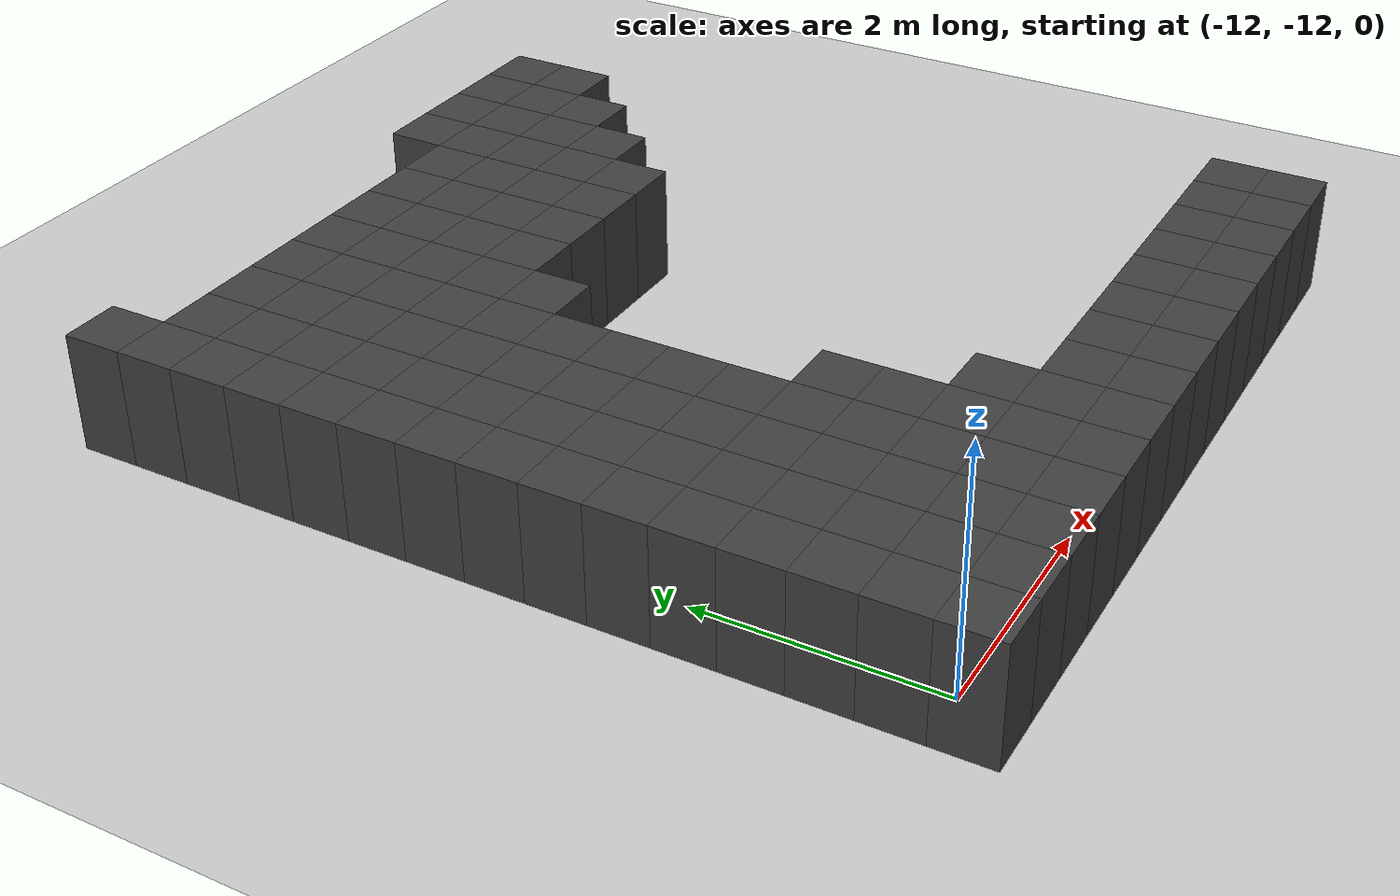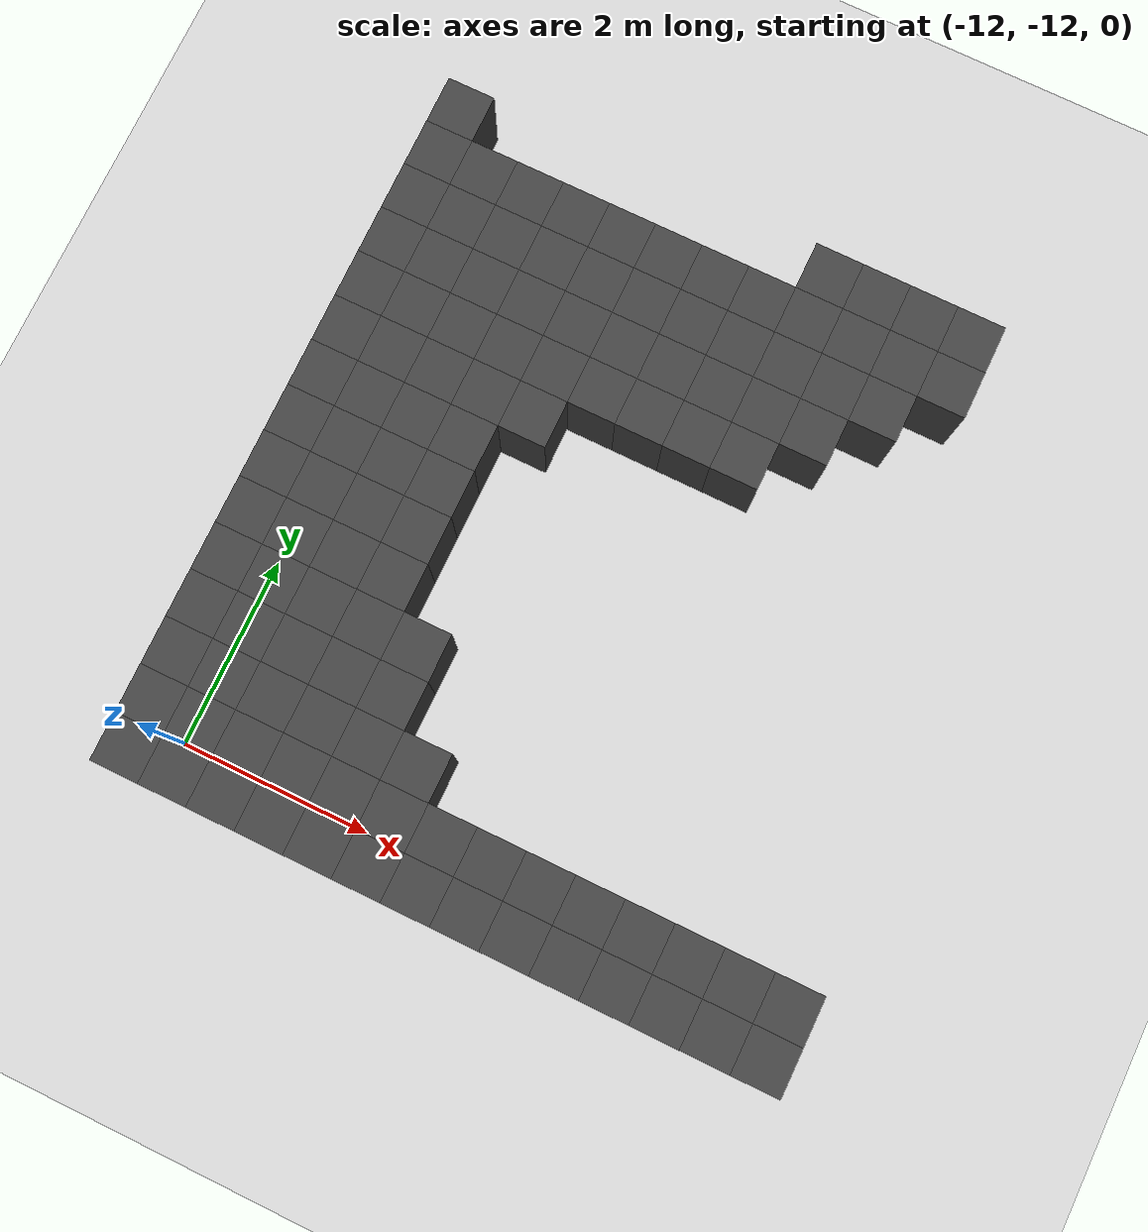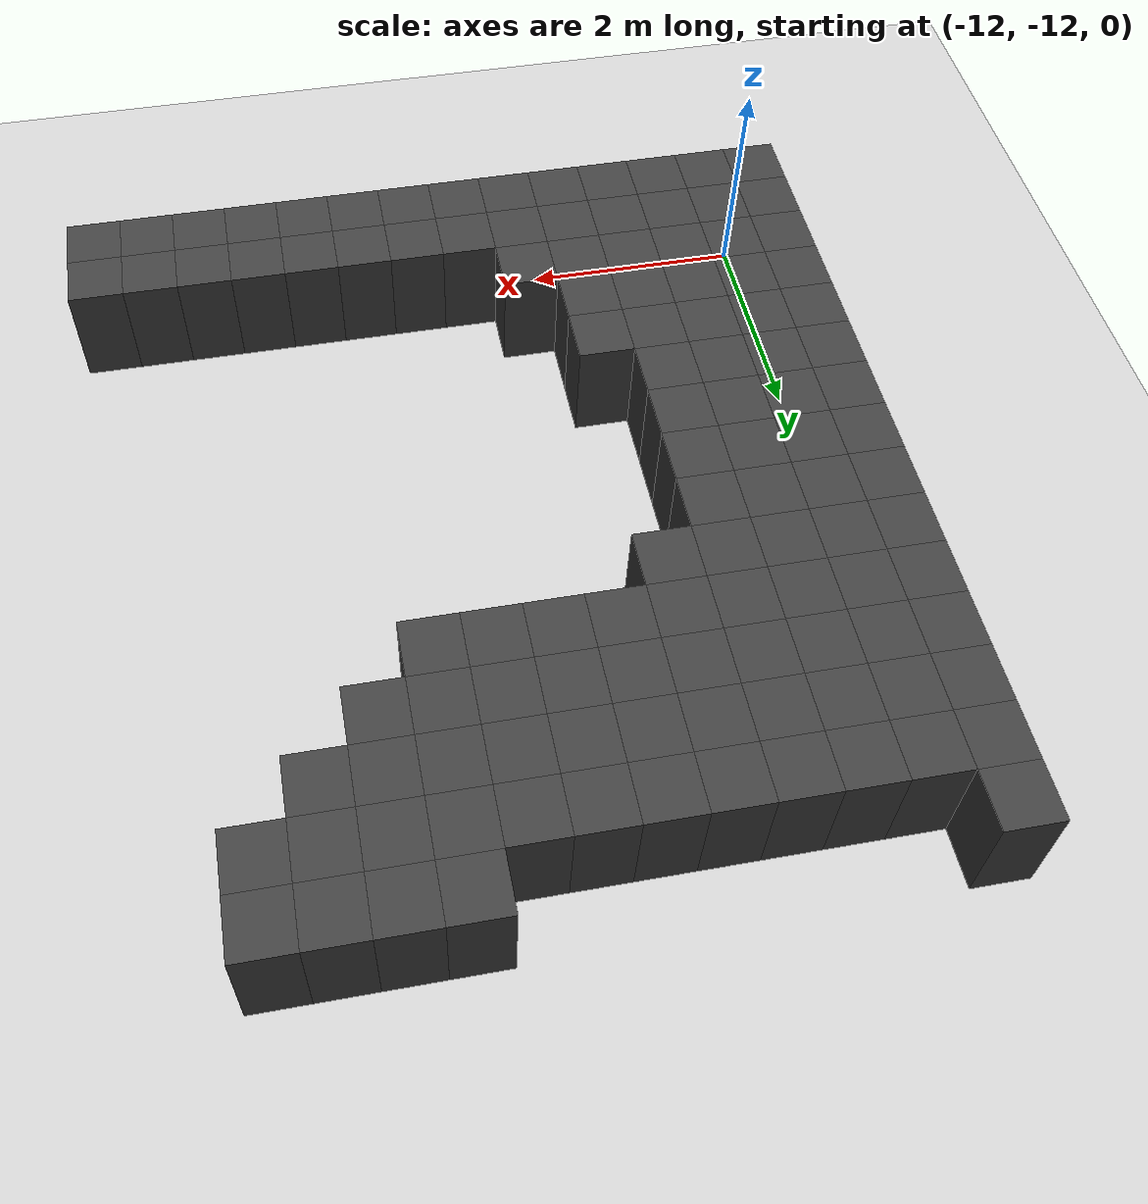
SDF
<sdf version="1.7">
 <world name="map_7219">
  <model name="ground_plane">
   <static>true</static>
   <link name="link">
    <collision name="collision">
     <geometry><plane><normal>0 0 1</normal><size>200 200</size></plane></geometry>
    </collision>
    <visual name="visual">
     <geometry><plane><normal>0 0 1</normal><size>200 200</size></plane></geometry>
     <material><ambient>0.8 0.8 0.8 1</ambient><diffuse>0.8 0.8 0.8 1</diffuse></material>
    </visual>
   </link>
  </model>
  <model name="maze_environment">
   <static>true</static>
   <link name="wall_474">
    <pose>-12.250 -5.250 0.500 0 0 0</pose>
    <collision name="col"><geometry><box><size>0.5 0.5 1.0</size></box></geometry></collision>
    <visual name="vis">
     <geometry><box><size>0.5 0.5 1.0</size></box></geometry>
     <material><ambient>0.15 0.15 0.15 1</ambient><diffuse>0.25 0.25 0.25 1</diffuse></material>
    </visual>
   </link>
   <link name="wall_475">
    <pose>-8.250 -5.250 0.500 0 0 0</pose>
    <collision name="col"><geometry><box><size>0.5 0.5 1.0</size></box></geometry></collision>
    <visual name="vis">
     <geometry><box><size>0.5 0.5 1.0</size></box></geometry>
     <material><ambient>0.15 0.15 0.15 1</ambient><diffuse>0.25 0.25 0.25 1</diffuse></material>
    </visual>
   </link>
   <link name="wall_476">
    <pose>-7.750 -5.250 0.500 0 0 0</pose>
    <collision name="col"><geometry><box><size>0.5 0.5 1.0</size></box></geometry></collision>
    <visual name="vis">
     <geometry><box><size>0.5 0.5 1.0</size></box></geometry>
     <material><ambient>0.15 0.15 0.15 1</ambient><diffuse>0.25 0.25 0.25 1</diffuse></material>
    </visual>
   </link>
   <link name="wall_477">
    <pose>-7.250 -5.250 0.500 0 0 0</pose>
    <collision name="col"><geometry><box><size>0.5 0.5 1.0</size></box></geometry></collision>
    <visual name="vis">
     <geometry><box><size>0.5 0.5 1.0</size></box></geometry>
     <material><ambient>0.15 0.15 0.15 1</ambient><diffuse>0.25 0.25 0.25 1</diffuse></material>
    </visual>
   </link>
   <link name="wall_478">
    <pose>-6.750 -5.250 0.500 0 0 0</pose>
    <collision name="col"><geometry><box><size>0.5 0.5 1.0</size></box></geometry></collision>
    <visual name="vis">
     <geometry><box><size>0.5 0.5 1.0</size></box></geometry>
     <material><ambient>0.15 0.15 0.15 1</ambient><diffuse>0.25 0.25 0.25 1</diffuse></material>
    </visual>
   </link>
   <link name="wall_482">
    <pose>-12.250 -5.750 0.500 0 0 0</pose>
    <collision name="col"><geometry><box><size>0.5 0.5 1.0</size></box></geometry></collision>
    <visual name="vis">
     <geometry><box><size>0.5 0.5 1.0</size></box></geometry>
     <material><ambient>0.15 0.15 0.15 1</ambient><diffuse>0.25 0.25 0.25 1</diffuse></material>
    </visual>
   </link>
   <link name="wall_483">
    <pose>-11.750 -5.750 0.500 0 0 0</pose>
    <collision name="col"><geometry><box><size>0.5 0.5 1.0</size></box></geometry></collision>
    <visual name="vis">
     <geometry><box><size>0.5 0.5 1.0</size></box></geometry>
     <material><ambient>0.15 0.15 0.15 1</ambient><diffuse>0.25 0.25 0.25 1</diffuse></material>
    </visual>
   </link>
   <link name="wall_484">
    <pose>-11.250 -5.750 0.500 0 0 0</pose>
    <collision name="col"><geometry><box><size>0.5 0.5 1.0</size></box></geometry></collision>
    <visual name="vis">
     <geometry><box><size>0.5 0.5 1.0</size></box></geometry>
     <material><ambient>0.15 0.15 0.15 1</ambient><diffuse>0.25 0.25 0.25 1</diffuse></material>
    </visual>
   </link>
   <link name="wall_485">
    <pose>-10.750 -5.750 0.500 0 0 0</pose>
    <collision name="col"><geometry><box><size>0.5 0.5 1.0</size></box></geometry></collision>
    <visual name="vis">
     <geometry><box><size>0.5 0.5 1.0</size></box></geometry>
     <material><ambient>0.15 0.15 0.15 1</ambient><diffuse>0.25 0.25 0.25 1</diffuse></material>
    </visual>
   </link>
   <link name="wall_486">
    <pose>-10.250 -5.750 0.500 0 0 0</pose>
    <collision name="col"><geometry><box><size>0.5 0.5 1.0</size></box></geometry></collision>
    <visual name="vis">
     <geometry><box><size>0.5 0.5 1.0</size></box></geometry>
     <material><ambient>0.15 0.15 0.15 1</ambient><diffuse>0.25 0.25 0.25 1</diffuse></material>
    </visual>
   </link>
   <link name="wall_487">
    <pose>-9.750 -5.750 0.500 0 0 0</pose>
    <collision name="col"><geometry><box><size>0.5 0.5 1.0</size></box></geometry></collision>
    <visual name="vis">
     <geometry><box><size>0.5 0.5 1.0</size></box></geometry>
     <material><ambient>0.15 0.15 0.15 1</ambient><diffuse>0.25 0.25 0.25 1</diffuse></material>
    </visual>
   </link>
   <link name="wall_488">
    <pose>-9.250 -5.750 0.500 0 0 0</pose>
    <collision name="col"><geometry><box><size>0.5 0.5 1.0</size></box></geometry></collision>
    <visual name="vis">
     <geometry><box><size>0.5 0.5 1.0</size></box></geometry>
     <material><ambient>0.15 0.15 0.15 1</ambient><diffuse>0.25 0.25 0.25 1</diffuse></material>
    </visual>
   </link>
   <link name="wall_489">
    <pose>-8.750 -5.750 0.500 0 0 0</pose>
    <collision name="col"><geometry><box><size>0.5 0.5 1.0</size></box></geometry></collision>
    <visual name="vis">
     <geometry><box><size>0.5 0.5 1.0</size></box></geometry>
     <material><ambient>0.15 0.15 0.15 1</ambient><diffuse>0.25 0.25 0.25 1</diffuse></material>
    </visual>
   </link>
   <link name="wall_490">
    <pose>-8.250 -5.750 0.500 0 0 0</pose>
    <collision name="col"><geometry><box><size>0.5 0.5 1.0</size></box></geometry></collision>
    <visual name="vis">
     <geometry><box><size>0.5 0.5 1.0</size></box></geometry>
     <material><ambient>0.15 0.15 0.15 1</ambient><diffuse>0.25 0.25 0.25 1</diffuse></material>
    </visual>
   </link>
   <link name="wall_491">
    <pose>-7.750 -5.750 0.500 0 0 0</pose>
    <collision name="col"><geometry><box><size>0.5 0.5 1.0</size></box></geometry></collision>
    <visual name="vis">
     <geometry><box><size>0.5 0.5 1.0</size></box></geometry>
     <material><ambient>0.15 0.15 0.15 1</ambient><diffuse>0.25 0.25 0.25 1</diffuse></material>
    </visual>
   </link>
   <link name="wall_492">
    <pose>-7.250 -5.750 0.500 0 0 0</pose>
    <collision name="col"><geometry><box><size>0.5 0.5 1.0</size></box></geometry></collision>
    <visual name="vis">
     <geometry><box><size>0.5 0.5 1.0</size></box></geometry>
     <material><ambient>0.15 0.15 0.15 1</ambient><diffuse>0.25 0.25 0.25 1</diffuse></material>
    </visual>
   </link>
   <link name="wall_493">
    <pose>-6.750 -5.750 0.500 0 0 0</pose>
    <collision name="col"><geometry><box><size>0.5 0.5 1.0</size></box></geometry></collision>
    <visual name="vis">
     <geometry><box><size>0.5 0.5 1.0</size></box></geometry>
     <material><ambient>0.15 0.15 0.15 1</ambient><diffuse>0.25 0.25 0.25 1</diffuse></material>
    </visual>
   </link>
   <link name="wall_498">
    <pose>-12.250 -6.250 0.500 0 0 0</pose>
    <collision name="col"><geometry><box><size>0.5 0.5 1.0</size></box></geometry></collision>
    <visual name="vis">
     <geometry><box><size>0.5 0.5 1.0</size></box></geometry>
     <material><ambient>0.15 0.15 0.15 1</ambient><diffuse>0.25 0.25 0.25 1</diffuse></material>
    </visual>
   </link>
   <link name="wall_499">
    <pose>-11.750 -6.250 0.500 0 0 0</pose>
    <collision name="col"><geometry><box><size>0.5 0.5 1.0</size></box></geometry></collision>
    <visual name="vis">
     <geometry><box><size>0.5 0.5 1.0</size></box></geometry>
     <material><ambient>0.15 0.15 0.15 1</ambient><diffuse>0.25 0.25 0.25 1</diffuse></material>
    </visual>
   </link>
   <link name="wall_500">
    <pose>-11.250 -6.250 0.500 0 0 0</pose>
    <collision name="col"><geometry><box><size>0.5 0.5 1.0</size></box></geometry></collision>
    <visual name="vis">
     <geometry><box><size>0.5 0.5 1.0</size></box></geometry>
     <material><ambient>0.15 0.15 0.15 1</ambient><diffuse>0.25 0.25 0.25 1</diffuse></material>
    </visual>
   </link>
   <link name="wall_501">
    <pose>-10.750 -6.250 0.500 0 0 0</pose>
    <collision name="col"><geometry><box><size>0.5 0.5 1.0</size></box></geometry></collision>
    <visual name="vis">
     <geometry><box><size>0.5 0.5 1.0</size></box></geometry>
     <material><ambient>0.15 0.15 0.15 1</ambient><diffuse>0.25 0.25 0.25 1</diffuse></material>
    </visual>
   </link>
   <link name="wall_502">
    <pose>-10.250 -6.250 0.500 0 0 0</pose>
    <collision name="col"><geometry><box><size>0.5 0.5 1.0</size></box></geometry></collision>
    <visual name="vis">
     <geometry><box><size>0.5 0.5 1.0</size></box></geometry>
     <material><ambient>0.15 0.15 0.15 1</ambient><diffuse>0.25 0.25 0.25 1</diffuse></material>
    </visual>
   </link>
   <link name="wall_503">
    <pose>-9.750 -6.250 0.500 0 0 0</pose>
    <collision name="col"><geometry><box><size>0.5 0.5 1.0</size></box></geometry></collision>
    <visual name="vis">
     <geometry><box><size>0.5 0.5 1.0</size></box></geometry>
     <material><ambient>0.15 0.15 0.15 1</ambient><diffuse>0.25 0.25 0.25 1</diffuse></material>
    </visual>
   </link>
   <link name="wall_504">
    <pose>-9.250 -6.250 0.500 0 0 0</pose>
    <collision name="col"><geometry><box><size>0.5 0.5 1.0</size></box></geometry></collision>
    <visual name="vis">
     <geometry><box><size>0.5 0.5 1.0</size></box></geometry>
     <material><ambient>0.15 0.15 0.15 1</ambient><diffuse>0.25 0.25 0.25 1</diffuse></material>
    </visual>
   </link>
   <link name="wall_505">
    <pose>-8.750 -6.250 0.500 0 0 0</pose>
    <collision name="col"><geometry><box><size>0.5 0.5 1.0</size></box></geometry></collision>
    <visual name="vis">
     <geometry><box><size>0.5 0.5 1.0</size></box></geometry>
     <material><ambient>0.15 0.15 0.15 1</ambient><diffuse>0.25 0.25 0.25 1</diffuse></material>
    </visual>
   </link>
   <link name="wall_506">
    <pose>-8.250 -6.250 0.500 0 0 0</pose>
    <collision name="col"><geometry><box><size>0.5 0.5 1.0</size></box></geometry></collision>
    <visual name="vis">
     <geometry><box><size>0.5 0.5 1.0</size></box></geometry>
     <material><ambient>0.15 0.15 0.15 1</ambient><diffuse>0.25 0.25 0.25 1</diffuse></material>
    </visual>
   </link>
   <link name="wall_507">
    <pose>-7.750 -6.250 0.500 0 0 0</pose>
    <collision name="col"><geometry><box><size>0.5 0.5 1.0</size></box></geometry></collision>
    <visual name="vis">
     <geometry><box><size>0.5 0.5 1.0</size></box></geometry>
     <material><ambient>0.15 0.15 0.15 1</ambient><diffuse>0.25 0.25 0.25 1</diffuse></material>
    </visual>
   </link>
   <link name="wall_508">
    <pose>-7.250 -6.250 0.500 0 0 0</pose>
    <collision name="col"><geometry><box><size>0.5 0.5 1.0</size></box></geometry></collision>
    <visual name="vis">
     <geometry><box><size>0.5 0.5 1.0</size></box></geometry>
     <material><ambient>0.15 0.15 0.15 1</ambient><diffuse>0.25 0.25 0.25 1</diffuse></material>
    </visual>
   </link>
   <link name="wall_512">
    <pose>-12.250 -6.750 0.500 0 0 0</pose>
    <collision name="col"><geometry><box><size>0.5 0.5 1.0</size></box></geometry></collision>
    <visual name="vis">
     <geometry><box><size>0.5 0.5 1.0</size></box></geometry>
     <material><ambient>0.15 0.15 0.15 1</ambient><diffuse>0.25 0.25 0.25 1</diffuse></material>
    </visual>
   </link>
   <link name="wall_513">
    <pose>-11.750 -6.750 0.500 0 0 0</pose>
    <collision name="col"><geometry><box><size>0.5 0.5 1.0</size></box></geometry></collision>
    <visual name="vis">
     <geometry><box><size>0.5 0.5 1.0</size></box></geometry>
     <material><ambient>0.15 0.15 0.15 1</ambient><diffuse>0.25 0.25 0.25 1</diffuse></material>
    </visual>
   </link>
   <link name="wall_514">
    <pose>-11.250 -6.750 0.500 0 0 0</pose>
    <collision name="col"><geometry><box><size>0.5 0.5 1.0</size></box></geometry></collision>
    <visual name="vis">
     <geometry><box><size>0.5 0.5 1.0</size></box></geometry>
     <material><ambient>0.15 0.15 0.15 1</ambient><diffuse>0.25 0.25 0.25 1</diffuse></material>
    </visual>
   </link>
   <link name="wall_515">
    <pose>-10.750 -6.750 0.500 0 0 0</pose>
    <collision name="col"><geometry><box><size>0.5 0.5 1.0</size></box></geometry></collision>
    <visual name="vis">
     <geometry><box><size>0.5 0.5 1.0</size></box></geometry>
     <material><ambient>0.15 0.15 0.15 1</ambient><diffuse>0.25 0.25 0.25 1</diffuse></material>
    </visual>
   </link>
   <link name="wall_516">
    <pose>-10.250 -6.750 0.500 0 0 0</pose>
    <collision name="col"><geometry><box><size>0.5 0.5 1.0</size></box></geometry></collision>
    <visual name="vis">
     <geometry><box><size>0.5 0.5 1.0</size></box></geometry>
     <material><ambient>0.15 0.15 0.15 1</ambient><diffuse>0.25 0.25 0.25 1</diffuse></material>
    </visual>
   </link>
   <link name="wall_517">
    <pose>-9.750 -6.750 0.500 0 0 0</pose>
    <collision name="col"><geometry><box><size>0.5 0.5 1.0</size></box></geometry></collision>
    <visual name="vis">
     <geometry><box><size>0.5 0.5 1.0</size></box></geometry>
     <material><ambient>0.15 0.15 0.15 1</ambient><diffuse>0.25 0.25 0.25 1</diffuse></material>
    </visual>
   </link>
   <link name="wall_518">
    <pose>-9.250 -6.750 0.500 0 0 0</pose>
    <collision name="col"><geometry><box><size>0.5 0.5 1.0</size></box></geometry></collision>
    <visual name="vis">
     <geometry><box><size>0.5 0.5 1.0</size></box></geometry>
     <material><ambient>0.15 0.15 0.15 1</ambient><diffuse>0.25 0.25 0.25 1</diffuse></material>
    </visual>
   </link>
   <link name="wall_519">
    <pose>-8.750 -6.750 0.500 0 0 0</pose>
    <collision name="col"><geometry><box><size>0.5 0.5 1.0</size></box></geometry></collision>
    <visual name="vis">
     <geometry><box><size>0.5 0.5 1.0</size></box></geometry>
     <material><ambient>0.15 0.15 0.15 1</ambient><diffuse>0.25 0.25 0.25 1</diffuse></material>
    </visual>
   </link>
   <link name="wall_520">
    <pose>-8.250 -6.750 0.500 0 0 0</pose>
    <collision name="col"><geometry><box><size>0.5 0.5 1.0</size></box></geometry></collision>
    <visual name="vis">
     <geometry><box><size>0.5 0.5 1.0</size></box></geometry>
     <material><ambient>0.15 0.15 0.15 1</ambient><diffuse>0.25 0.25 0.25 1</diffuse></material>
    </visual>
   </link>
   <link name="wall_521">
    <pose>-7.750 -6.750 0.500 0 0 0</pose>
    <collision name="col"><geometry><box><size>0.5 0.5 1.0</size></box></geometry></collision>
    <visual name="vis">
     <geometry><box><size>0.5 0.5 1.0</size></box></geometry>
     <material><ambient>0.15 0.15 0.15 1</ambient><diffuse>0.25 0.25 0.25 1</diffuse></material>
    </visual>
   </link>
   <link name="wall_526">
    <pose>-12.250 -7.250 0.500 0 0 0</pose>
    <collision name="col"><geometry><box><size>0.5 0.5 1.0</size></box></geometry></collision>
    <visual name="vis">
     <geometry><box><size>0.5 0.5 1.0</size></box></geometry>
     <material><ambient>0.15 0.15 0.15 1</ambient><diffuse>0.25 0.25 0.25 1</diffuse></material>
    </visual>
   </link>
   <link name="wall_527">
    <pose>-11.750 -7.250 0.500 0 0 0</pose>
    <collision name="col"><geometry><box><size>0.5 0.5 1.0</size></box></geometry></collision>
    <visual name="vis">
     <geometry><box><size>0.5 0.5 1.0</size></box></geometry>
     <material><ambient>0.15 0.15 0.15 1</ambient><diffuse>0.25 0.25 0.25 1</diffuse></material>
    </visual>
   </link>
   <link name="wall_528">
    <pose>-11.250 -7.250 0.500 0 0 0</pose>
    <collision name="col"><geometry><box><size>0.5 0.5 1.0</size></box></geometry></collision>
    <visual name="vis">
     <geometry><box><size>0.5 0.5 1.0</size></box></geometry>
     <material><ambient>0.15 0.15 0.15 1</ambient><diffuse>0.25 0.25 0.25 1</diffuse></material>
    </visual>
   </link>
   <link name="wall_529">
    <pose>-10.750 -7.250 0.500 0 0 0</pose>
    <collision name="col"><geometry><box><size>0.5 0.5 1.0</size></box></geometry></collision>
    <visual name="vis">
     <geometry><box><size>0.5 0.5 1.0</size></box></geometry>
     <material><ambient>0.15 0.15 0.15 1</ambient><diffuse>0.25 0.25 0.25 1</diffuse></material>
    </visual>
   </link>
   <link name="wall_530">
    <pose>-10.250 -7.250 0.500 0 0 0</pose>
    <collision name="col"><geometry><box><size>0.5 0.5 1.0</size></box></geometry></collision>
    <visual name="vis">
     <geometry><box><size>0.5 0.5 1.0</size></box></geometry>
     <material><ambient>0.15 0.15 0.15 1</ambient><diffuse>0.25 0.25 0.25 1</diffuse></material>
    </visual>
   </link>
   <link name="wall_531">
    <pose>-9.750 -7.250 0.500 0 0 0</pose>
    <collision name="col"><geometry><box><size>0.5 0.5 1.0</size></box></geometry></collision>
    <visual name="vis">
     <geometry><box><size>0.5 0.5 1.0</size></box></geometry>
     <material><ambient>0.15 0.15 0.15 1</ambient><diffuse>0.25 0.25 0.25 1</diffuse></material>
    </visual>
   </link>
   <link name="wall_532">
    <pose>-9.250 -7.250 0.500 0 0 0</pose>
    <collision name="col"><geometry><box><size>0.5 0.5 1.0</size></box></geometry></collision>
    <visual name="vis">
     <geometry><box><size>0.5 0.5 1.0</size></box></geometry>
     <material><ambient>0.15 0.15 0.15 1</ambient><diffuse>0.25 0.25 0.25 1</diffuse></material>
    </visual>
   </link>
   <link name="wall_533">
    <pose>-8.750 -7.250 0.500 0 0 0</pose>
    <collision name="col"><geometry><box><size>0.5 0.5 1.0</size></box></geometry></collision>
    <visual name="vis">
     <geometry><box><size>0.5 0.5 1.0</size></box></geometry>
     <material><ambient>0.15 0.15 0.15 1</ambient><diffuse>0.25 0.25 0.25 1</diffuse></material>
    </visual>
   </link>
   <link name="wall_534">
    <pose>-8.250 -7.250 0.500 0 0 0</pose>
    <collision name="col"><geometry><box><size>0.5 0.5 1.0</size></box></geometry></collision>
    <visual name="vis">
     <geometry><box><size>0.5 0.5 1.0</size></box></geometry>
     <material><ambient>0.15 0.15 0.15 1</ambient><diffuse>0.25 0.25 0.25 1</diffuse></material>
    </visual>
   </link>
   <link name="wall_538">
    <pose>-12.250 -7.750 0.500 0 0 0</pose>
    <collision name="col"><geometry><box><size>0.5 0.5 1.0</size></box></geometry></collision>
    <visual name="vis">
     <geometry><box><size>0.5 0.5 1.0</size></box></geometry>
     <material><ambient>0.15 0.15 0.15 1</ambient><diffuse>0.25 0.25 0.25 1</diffuse></material>
    </visual>
   </link>
   <link name="wall_539">
    <pose>-11.750 -7.750 0.500 0 0 0</pose>
    <collision name="col"><geometry><box><size>0.5 0.5 1.0</size></box></geometry></collision>
    <visual name="vis">
     <geometry><box><size>0.5 0.5 1.0</size></box></geometry>
     <material><ambient>0.15 0.15 0.15 1</ambient><diffuse>0.25 0.25 0.25 1</diffuse></material>
    </visual>
   </link>
   <link name="wall_540">
    <pose>-11.250 -7.750 0.500 0 0 0</pose>
    <collision name="col"><geometry><box><size>0.5 0.5 1.0</size></box></geometry></collision>
    <visual name="vis">
     <geometry><box><size>0.5 0.5 1.0</size></box></geometry>
     <material><ambient>0.15 0.15 0.15 1</ambient><diffuse>0.25 0.25 0.25 1</diffuse></material>
    </visual>
   </link>
   <link name="wall_541">
    <pose>-10.750 -7.750 0.500 0 0 0</pose>
    <collision name="col"><geometry><box><size>0.5 0.5 1.0</size></box></geometry></collision>
    <visual name="vis">
     <geometry><box><size>0.5 0.5 1.0</size></box></geometry>
     <material><ambient>0.15 0.15 0.15 1</ambient><diffuse>0.25 0.25 0.25 1</diffuse></material>
    </visual>
   </link>
   <link name="wall_542">
    <pose>-10.250 -7.750 0.500 0 0 0</pose>
    <collision name="col"><geometry><box><size>0.5 0.5 1.0</size></box></geometry></collision>
    <visual name="vis">
     <geometry><box><size>0.5 0.5 1.0</size></box></geometry>
     <material><ambient>0.15 0.15 0.15 1</ambient><diffuse>0.25 0.25 0.25 1</diffuse></material>
    </visual>
   </link>
   <link name="wall_546">
    <pose>-12.250 -8.250 0.500 0 0 0</pose>
    <collision name="col"><geometry><box><size>0.5 0.5 1.0</size></box></geometry></collision>
    <visual name="vis">
     <geometry><box><size>0.5 0.5 1.0</size></box></geometry>
     <material><ambient>0.15 0.15 0.15 1</ambient><diffuse>0.25 0.25 0.25 1</diffuse></material>
    </visual>
   </link>
   <link name="wall_547">
    <pose>-11.750 -8.250 0.500 0 0 0</pose>
    <collision name="col"><geometry><box><size>0.5 0.5 1.0</size></box></geometry></collision>
    <visual name="vis">
     <geometry><box><size>0.5 0.5 1.0</size></box></geometry>
     <material><ambient>0.15 0.15 0.15 1</ambient><diffuse>0.25 0.25 0.25 1</diffuse></material>
    </visual>
   </link>
   <link name="wall_548">
    <pose>-11.250 -8.250 0.500 0 0 0</pose>
    <collision name="col"><geometry><box><size>0.5 0.5 1.0</size></box></geometry></collision>
    <visual name="vis">
     <geometry><box><size>0.5 0.5 1.0</size></box></geometry>
     <material><ambient>0.15 0.15 0.15 1</ambient><diffuse>0.25 0.25 0.25 1</diffuse></material>
    </visual>
   </link>
   <link name="wall_549">
    <pose>-10.750 -8.250 0.500 0 0 0</pose>
    <collision name="col"><geometry><box><size>0.5 0.5 1.0</size></box></geometry></collision>
    <visual name="vis">
     <geometry><box><size>0.5 0.5 1.0</size></box></geometry>
     <material><ambient>0.15 0.15 0.15 1</ambient><diffuse>0.25 0.25 0.25 1</diffuse></material>
    </visual>
   </link>
   <link name="wall_551">
    <pose>-12.250 -8.750 0.500 0 0 0</pose>
    <collision name="col"><geometry><box><size>0.5 0.5 1.0</size></box></geometry></collision>
    <visual name="vis">
     <geometry><box><size>0.5 0.5 1.0</size></box></geometry>
     <material><ambient>0.15 0.15 0.15 1</ambient><diffuse>0.25 0.25 0.25 1</diffuse></material>
    </visual>
   </link>
   <link name="wall_552">
    <pose>-11.750 -8.750 0.500 0 0 0</pose>
    <collision name="col"><geometry><box><size>0.5 0.5 1.0</size></box></geometry></collision>
    <visual name="vis">
     <geometry><box><size>0.5 0.5 1.0</size></box></geometry>
     <material><ambient>0.15 0.15 0.15 1</ambient><diffuse>0.25 0.25 0.25 1</diffuse></material>
    </visual>
   </link>
   <link name="wall_553">
    <pose>-11.250 -8.750 0.500 0 0 0</pose>
    <collision name="col"><geometry><box><size>0.5 0.5 1.0</size></box></geometry></collision>
    <visual name="vis">
     <geometry><box><size>0.5 0.5 1.0</size></box></geometry>
     <material><ambient>0.15 0.15 0.15 1</ambient><diffuse>0.25 0.25 0.25 1</diffuse></material>
    </visual>
   </link>
   <link name="wall_554">
    <pose>-10.750 -8.750 0.500 0 0 0</pose>
    <collision name="col"><geometry><box><size>0.5 0.5 1.0</size></box></geometry></collision>
    <visual name="vis">
     <geometry><box><size>0.5 0.5 1.0</size></box></geometry>
     <material><ambient>0.15 0.15 0.15 1</ambient><diffuse>0.25 0.25 0.25 1</diffuse></material>
    </visual>
   </link>
   <link name="wall_556">
    <pose>-12.250 -9.250 0.500 0 0 0</pose>
    <collision name="col"><geometry><box><size>0.5 0.5 1.0</size></box></geometry></collision>
    <visual name="vis">
     <geometry><box><size>0.5 0.5 1.0</size></box></geometry>
     <material><ambient>0.15 0.15 0.15 1</ambient><diffuse>0.25 0.25 0.25 1</diffuse></material>
    </visual>
   </link>
   <link name="wall_557">
    <pose>-11.750 -9.250 0.500 0 0 0</pose>
    <collision name="col"><geometry><box><size>0.5 0.5 1.0</size></box></geometry></collision>
    <visual name="vis">
     <geometry><box><size>0.5 0.5 1.0</size></box></geometry>
     <material><ambient>0.15 0.15 0.15 1</ambient><diffuse>0.25 0.25 0.25 1</diffuse></material>
    </visual>
   </link>
   <link name="wall_558">
    <pose>-11.250 -9.250 0.500 0 0 0</pose>
    <collision name="col"><geometry><box><size>0.5 0.5 1.0</size></box></geometry></collision>
    <visual name="vis">
     <geometry><box><size>0.5 0.5 1.0</size></box></geometry>
     <material><ambient>0.15 0.15 0.15 1</ambient><diffuse>0.25 0.25 0.25 1</diffuse></material>
    </visual>
   </link>
   <link name="wall_559">
    <pose>-10.750 -9.250 0.500 0 0 0</pose>
    <collision name="col"><geometry><box><size>0.5 0.5 1.0</size></box></geometry></collision>
    <visual name="vis">
     <geometry><box><size>0.5 0.5 1.0</size></box></geometry>
     <material><ambient>0.15 0.15 0.15 1</ambient><diffuse>0.25 0.25 0.25 1</diffuse></material>
    </visual>
   </link>
   <link name="wall_561">
    <pose>-12.250 -9.750 0.500 0 0 0</pose>
    <collision name="col"><geometry><box><size>0.5 0.5 1.0</size></box></geometry></collision>
    <visual name="vis">
     <geometry><box><size>0.5 0.5 1.0</size></box></geometry>
     <material><ambient>0.15 0.15 0.15 1</ambient><diffuse>0.25 0.25 0.25 1</diffuse></material>
    </visual>
   </link>
   <link name="wall_562">
    <pose>-11.750 -9.750 0.500 0 0 0</pose>
    <collision name="col"><geometry><box><size>0.5 0.5 1.0</size></box></geometry></collision>
    <visual name="vis">
     <geometry><box><size>0.5 0.5 1.0</size></box></geometry>
     <material><ambient>0.15 0.15 0.15 1</ambient><diffuse>0.25 0.25 0.25 1</diffuse></material>
    </visual>
   </link>
   <link name="wall_563">
    <pose>-11.250 -9.750 0.500 0 0 0</pose>
    <collision name="col"><geometry><box><size>0.5 0.5 1.0</size></box></geometry></collision>
    <visual name="vis">
     <geometry><box><size>0.5 0.5 1.0</size></box></geometry>
     <material><ambient>0.15 0.15 0.15 1</ambient><diffuse>0.25 0.25 0.25 1</diffuse></material>
    </visual>
   </link>
   <link name="wall_564">
    <pose>-10.750 -9.750 0.500 0 0 0</pose>
    <collision name="col"><geometry><box><size>0.5 0.5 1.0</size></box></geometry></collision>
    <visual name="vis">
     <geometry><box><size>0.5 0.5 1.0</size></box></geometry>
     <material><ambient>0.15 0.15 0.15 1</ambient><diffuse>0.25 0.25 0.25 1</diffuse></material>
    </visual>
   </link>
   <link name="wall_566">
    <pose>-12.250 -10.250 0.500 0 0 0</pose>
    <collision name="col"><geometry><box><size>0.5 0.5 1.0</size></box></geometry></collision>
    <visual name="vis">
     <geometry><box><size>0.5 0.5 1.0</size></box></geometry>
     <material><ambient>0.15 0.15 0.15 1</ambient><diffuse>0.25 0.25 0.25 1</diffuse></material>
    </visual>
   </link>
   <link name="wall_567">
    <pose>-11.750 -10.250 0.500 0 0 0</pose>
    <collision name="col"><geometry><box><size>0.5 0.5 1.0</size></box></geometry></collision>
    <visual name="vis">
     <geometry><box><size>0.5 0.5 1.0</size></box></geometry>
     <material><ambient>0.15 0.15 0.15 1</ambient><diffuse>0.25 0.25 0.25 1</diffuse></material>
    </visual>
   </link>
   <link name="wall_568">
    <pose>-11.250 -10.250 0.500 0 0 0</pose>
    <collision name="col"><geometry><box><size>0.5 0.5 1.0</size></box></geometry></collision>
    <visual name="vis">
     <geometry><box><size>0.5 0.5 1.0</size></box></geometry>
     <material><ambient>0.15 0.15 0.15 1</ambient><diffuse>0.25 0.25 0.25 1</diffuse></material>
    </visual>
   </link>
   <link name="wall_569">
    <pose>-10.750 -10.250 0.500 0 0 0</pose>
    <collision name="col"><geometry><box><size>0.5 0.5 1.0</size></box></geometry></collision>
    <visual name="vis">
     <geometry><box><size>0.5 0.5 1.0</size></box></geometry>
     <material><ambient>0.15 0.15 0.15 1</ambient><diffuse>0.25 0.25 0.25 1</diffuse></material>
    </visual>
   </link>
   <link name="wall_570">
    <pose>-10.250 -10.250 0.500 0 0 0</pose>
    <collision name="col"><geometry><box><size>0.5 0.5 1.0</size></box></geometry></collision>
    <visual name="vis">
     <geometry><box><size>0.5 0.5 1.0</size></box></geometry>
     <material><ambient>0.15 0.15 0.15 1</ambient><diffuse>0.25 0.25 0.25 1</diffuse></material>
    </visual>
   </link>
   <link name="wall_572">
    <pose>-12.250 -10.750 0.500 0 0 0</pose>
    <collision name="col"><geometry><box><size>0.5 0.5 1.0</size></box></geometry></collision>
    <visual name="vis">
     <geometry><box><size>0.5 0.5 1.0</size></box></geometry>
     <material><ambient>0.15 0.15 0.15 1</ambient><diffuse>0.25 0.25 0.25 1</diffuse></material>
    </visual>
   </link>
   <link name="wall_573">
    <pose>-11.750 -10.750 0.500 0 0 0</pose>
    <collision name="col"><geometry><box><size>0.5 0.5 1.0</size></box></geometry></collision>
    <visual name="vis">
     <geometry><box><size>0.5 0.5 1.0</size></box></geometry>
     <material><ambient>0.15 0.15 0.15 1</ambient><diffuse>0.25 0.25 0.25 1</diffuse></material>
    </visual>
   </link>
   <link name="wall_574">
    <pose>-11.250 -10.750 0.500 0 0 0</pose>
    <collision name="col"><geometry><box><size>0.5 0.5 1.0</size></box></geometry></collision>
    <visual name="vis">
     <geometry><box><size>0.5 0.5 1.0</size></box></geometry>
     <material><ambient>0.15 0.15 0.15 1</ambient><diffuse>0.25 0.25 0.25 1</diffuse></material>
    </visual>
   </link>
   <link name="wall_575">
    <pose>-10.750 -10.750 0.500 0 0 0</pose>
    <collision name="col"><geometry><box><size>0.5 0.5 1.0</size></box></geometry></collision>
    <visual name="vis">
     <geometry><box><size>0.5 0.5 1.0</size></box></geometry>
     <material><ambient>0.15 0.15 0.15 1</ambient><diffuse>0.25 0.25 0.25 1</diffuse></material>
    </visual>
   </link>
   <link name="wall_576">
    <pose>-10.250 -10.750 0.500 0 0 0</pose>
    <collision name="col"><geometry><box><size>0.5 0.5 1.0</size></box></geometry></collision>
    <visual name="vis">
     <geometry><box><size>0.5 0.5 1.0</size></box></geometry>
     <material><ambient>0.15 0.15 0.15 1</ambient><diffuse>0.25 0.25 0.25 1</diffuse></material>
    </visual>
   </link>
   <link name="wall_578">
    <pose>-12.250 -11.250 0.500 0 0 0</pose>
    <collision name="col"><geometry><box><size>0.5 0.5 1.0</size></box></geometry></collision>
    <visual name="vis">
     <geometry><box><size>0.5 0.5 1.0</size></box></geometry>
     <material><ambient>0.15 0.15 0.15 1</ambient><diffuse>0.25 0.25 0.25 1</diffuse></material>
    </visual>
   </link>
   <link name="wall_579">
    <pose>-11.750 -11.250 0.500 0 0 0</pose>
    <collision name="col"><geometry><box><size>0.5 0.5 1.0</size></box></geometry></collision>
    <visual name="vis">
     <geometry><box><size>0.5 0.5 1.0</size></box></geometry>
     <material><ambient>0.15 0.15 0.15 1</ambient><diffuse>0.25 0.25 0.25 1</diffuse></material>
    </visual>
   </link>
   <link name="wall_580">
    <pose>-11.250 -11.250 0.500 0 0 0</pose>
    <collision name="col"><geometry><box><size>0.5 0.5 1.0</size></box></geometry></collision>
    <visual name="vis">
     <geometry><box><size>0.5 0.5 1.0</size></box></geometry>
     <material><ambient>0.15 0.15 0.15 1</ambient><diffuse>0.25 0.25 0.25 1</diffuse></material>
    </visual>
   </link>
   <link name="wall_581">
    <pose>-10.750 -11.250 0.500 0 0 0</pose>
    <collision name="col"><geometry><box><size>0.5 0.5 1.0</size></box></geometry></collision>
    <visual name="vis">
     <geometry><box><size>0.5 0.5 1.0</size></box></geometry>
     <material><ambient>0.15 0.15 0.15 1</ambient><diffuse>0.25 0.25 0.25 1</diffuse></material>
    </visual>
   </link>
   <link name="wall_582">
    <pose>-10.250 -11.250 0.500 0 0 0</pose>
    <collision name="col"><geometry><box><size>0.5 0.5 1.0</size></box></geometry></collision>
    <visual name="vis">
     <geometry><box><size>0.5 0.5 1.0</size></box></geometry>
     <material><ambient>0.15 0.15 0.15 1</ambient><diffuse>0.25 0.25 0.25 1</diffuse></material>
    </visual>
   </link>
   <link name="wall_583">
    <pose>-9.750 -11.250 0.500 0 0 0</pose>
    <collision name="col"><geometry><box><size>0.5 0.5 1.0</size></box></geometry></collision>
    <visual name="vis">
     <geometry><box><size>0.5 0.5 1.0</size></box></geometry>
     <material><ambient>0.15 0.15 0.15 1</ambient><diffuse>0.25 0.25 0.25 1</diffuse></material>
    </visual>
   </link>
   <link name="wall_590">
    <pose>-12.250 -11.750 0.500 0 0 0</pose>
    <collision name="col"><geometry><box><size>0.5 0.5 1.0</size></box></geometry></collision>
    <visual name="vis">
     <geometry><box><size>0.5 0.5 1.0</size></box></geometry>
     <material><ambient>0.15 0.15 0.15 1</ambient><diffuse>0.25 0.25 0.25 1</diffuse></material>
    </visual>
   </link>
   <link name="wall_591">
    <pose>-11.750 -11.750 0.500 0 0 0</pose>
    <collision name="col"><geometry><box><size>0.5 0.5 1.0</size></box></geometry></collision>
    <visual name="vis">
     <geometry><box><size>0.5 0.5 1.0</size></box></geometry>
     <material><ambient>0.15 0.15 0.15 1</ambient><diffuse>0.25 0.25 0.25 1</diffuse></material>
    </visual>
   </link>
   <link name="wall_592">
    <pose>-11.250 -11.750 0.500 0 0 0</pose>
    <collision name="col"><geometry><box><size>0.5 0.5 1.0</size></box></geometry></collision>
    <visual name="vis">
     <geometry><box><size>0.5 0.5 1.0</size></box></geometry>
     <material><ambient>0.15 0.15 0.15 1</ambient><diffuse>0.25 0.25 0.25 1</diffuse></material>
    </visual>
   </link>
   <link name="wall_593">
    <pose>-10.750 -11.750 0.500 0 0 0</pose>
    <collision name="col"><geometry><box><size>0.5 0.5 1.0</size></box></geometry></collision>
    <visual name="vis">
     <geometry><box><size>0.5 0.5 1.0</size></box></geometry>
     <material><ambient>0.15 0.15 0.15 1</ambient><diffuse>0.25 0.25 0.25 1</diffuse></material>
    </visual>
   </link>
   <link name="wall_594">
    <pose>-10.250 -11.750 0.500 0 0 0</pose>
    <collision name="col"><geometry><box><size>0.5 0.5 1.0</size></box></geometry></collision>
    <visual name="vis">
     <geometry><box><size>0.5 0.5 1.0</size></box></geometry>
     <material><ambient>0.15 0.15 0.15 1</ambient><diffuse>0.25 0.25 0.25 1</diffuse></material>
    </visual>
   </link>
   <link name="wall_595">
    <pose>-9.750 -11.750 0.500 0 0 0</pose>
    <collision name="col"><geometry><box><size>0.5 0.5 1.0</size></box></geometry></collision>
    <visual name="vis">
     <geometry><box><size>0.5 0.5 1.0</size></box></geometry>
     <material><ambient>0.15 0.15 0.15 1</ambient><diffuse>0.25 0.25 0.25 1</diffuse></material>
    </visual>
   </link>
   <link name="wall_596">
    <pose>-9.250 -11.750 0.500 0 0 0</pose>
    <collision name="col"><geometry><box><size>0.5 0.5 1.0</size></box></geometry></collision>
    <visual name="vis">
     <geometry><box><size>0.5 0.5 1.0</size></box></geometry>
     <material><ambient>0.15 0.15 0.15 1</ambient><diffuse>0.25 0.25 0.25 1</diffuse></material>
    </visual>
   </link>
   <link name="wall_597">
    <pose>-8.750 -11.750 0.500 0 0 0</pose>
    <collision name="col"><geometry><box><size>0.5 0.5 1.0</size></box></geometry></collision>
    <visual name="vis">
     <geometry><box><size>0.5 0.5 1.0</size></box></geometry>
     <material><ambient>0.15 0.15 0.15 1</ambient><diffuse>0.25 0.25 0.25 1</diffuse></material>
    </visual>
   </link>
   <link name="wall_598">
    <pose>-8.250 -11.750 0.500 0 0 0</pose>
    <collision name="col"><geometry><box><size>0.5 0.5 1.0</size></box></geometry></collision>
    <visual name="vis">
     <geometry><box><size>0.5 0.5 1.0</size></box></geometry>
     <material><ambient>0.15 0.15 0.15 1</ambient><diffuse>0.25 0.25 0.25 1</diffuse></material>
    </visual>
   </link>
   <link name="wall_599">
    <pose>-7.750 -11.750 0.500 0 0 0</pose>
    <collision name="col"><geometry><box><size>0.5 0.5 1.0</size></box></geometry></collision>
    <visual name="vis">
     <geometry><box><size>0.5 0.5 1.0</size></box></geometry>
     <material><ambient>0.15 0.15 0.15 1</ambient><diffuse>0.25 0.25 0.25 1</diffuse></material>
    </visual>
   </link>
   <link name="wall_600">
    <pose>-7.250 -11.750 0.500 0 0 0</pose>
    <collision name="col"><geometry><box><size>0.5 0.5 1.0</size></box></geometry></collision>
    <visual name="vis">
     <geometry><box><size>0.5 0.5 1.0</size></box></geometry>
     <material><ambient>0.15 0.15 0.15 1</ambient><diffuse>0.25 0.25 0.25 1</diffuse></material>
    </visual>
   </link>
   <link name="wall_601">
    <pose>-6.750 -11.750 0.500 0 0 0</pose>
    <collision name="col"><geometry><box><size>0.5 0.5 1.0</size></box></geometry></collision>
    <visual name="vis">
     <geometry><box><size>0.5 0.5 1.0</size></box></geometry>
     <material><ambient>0.15 0.15 0.15 1</ambient><diffuse>0.25 0.25 0.25 1</diffuse></material>
    </visual>
   </link>
   <link name="wall_602">
    <pose>-6.250 -11.750 0.500 0 0 0</pose>
    <collision name="col"><geometry><box><size>0.5 0.5 1.0</size></box></geometry></collision>
    <visual name="vis">
     <geometry><box><size>0.5 0.5 1.0</size></box></geometry>
     <material><ambient>0.15 0.15 0.15 1</ambient><diffuse>0.25 0.25 0.25 1</diffuse></material>
    </visual>
   </link>
   <link name="wall_603">
    <pose>-5.750 -11.750 0.500 0 0 0</pose>
    <collision name="col"><geometry><box><size>0.5 0.5 1.0</size></box></geometry></collision>
    <visual name="vis">
     <geometry><box><size>0.5 0.5 1.0</size></box></geometry>
     <material><ambient>0.15 0.15 0.15 1</ambient><diffuse>0.25 0.25 0.25 1</diffuse></material>
    </visual>
   </link>
   <link name="wall_621">
    <pose>-12.250 -12.250 0.500 0 0 0</pose>
    <collision name="col"><geometry><box><size>0.5 0.5 1.0</size></box></geometry></collision>
    <visual name="vis">
     <geometry><box><size>0.5 0.5 1.0</size></box></geometry>
     <material><ambient>0.15 0.15 0.15 1</ambient><diffuse>0.25 0.25 0.25 1</diffuse></material>
    </visual>
   </link>
   <link name="wall_622">
    <pose>-11.750 -12.250 0.500 0 0 0</pose>
    <collision name="col"><geometry><box><size>0.5 0.5 1.0</size></box></geometry></collision>
    <visual name="vis">
     <geometry><box><size>0.5 0.5 1.0</size></box></geometry>
     <material><ambient>0.15 0.15 0.15 1</ambient><diffuse>0.25 0.25 0.25 1</diffuse></material>
    </visual>
   </link>
   <link name="wall_623">
    <pose>-11.250 -12.250 0.500 0 0 0</pose>
    <collision name="col"><geometry><box><size>0.5 0.5 1.0</size></box></geometry></collision>
    <visual name="vis">
     <geometry><box><size>0.5 0.5 1.0</size></box></geometry>
     <material><ambient>0.15 0.15 0.15 1</ambient><diffuse>0.25 0.25 0.25 1</diffuse></material>
    </visual>
   </link>
   <link name="wall_624">
    <pose>-10.750 -12.250 0.500 0 0 0</pose>
    <collision name="col"><geometry><box><size>0.5 0.5 1.0</size></box></geometry></collision>
    <visual name="vis">
     <geometry><box><size>0.5 0.5 1.0</size></box></geometry>
     <material><ambient>0.15 0.15 0.15 1</ambient><diffuse>0.25 0.25 0.25 1</diffuse></material>
    </visual>
   </link>
   <link name="wall_625">
    <pose>-10.250 -12.250 0.500 0 0 0</pose>
    <collision name="col"><geometry><box><size>0.5 0.5 1.0</size></box></geometry></collision>
    <visual name="vis">
     <geometry><box><size>0.5 0.5 1.0</size></box></geometry>
     <material><ambient>0.15 0.15 0.15 1</ambient><diffuse>0.25 0.25 0.25 1</diffuse></material>
    </visual>
   </link>
   <link name="wall_626">
    <pose>-9.750 -12.250 0.500 0 0 0</pose>
    <collision name="col"><geometry><box><size>0.5 0.5 1.0</size></box></geometry></collision>
    <visual name="vis">
     <geometry><box><size>0.5 0.5 1.0</size></box></geometry>
     <material><ambient>0.15 0.15 0.15 1</ambient><diffuse>0.25 0.25 0.25 1</diffuse></material>
    </visual>
   </link>
   <link name="wall_627">
    <pose>-9.250 -12.250 0.500 0 0 0</pose>
    <collision name="col"><geometry><box><size>0.5 0.5 1.0</size></box></geometry></collision>
    <visual name="vis">
     <geometry><box><size>0.5 0.5 1.0</size></box></geometry>
     <material><ambient>0.15 0.15 0.15 1</ambient><diffuse>0.25 0.25 0.25 1</diffuse></material>
    </visual>
   </link>
   <link name="wall_628">
    <pose>-8.750 -12.250 0.500 0 0 0</pose>
    <collision name="col"><geometry><box><size>0.5 0.5 1.0</size></box></geometry></collision>
    <visual name="vis">
     <geometry><box><size>0.5 0.5 1.0</size></box></geometry>
     <material><ambient>0.15 0.15 0.15 1</ambient><diffuse>0.25 0.25 0.25 1</diffuse></material>
    </visual>
   </link>
   <link name="wall_629">
    <pose>-8.250 -12.250 0.500 0 0 0</pose>
    <collision name="col"><geometry><box><size>0.5 0.5 1.0</size></box></geometry></collision>
    <visual name="vis">
     <geometry><box><size>0.5 0.5 1.0</size></box></geometry>
     <material><ambient>0.15 0.15 0.15 1</ambient><diffuse>0.25 0.25 0.25 1</diffuse></material>
    </visual>
   </link>
   <link name="wall_630">
    <pose>-7.750 -12.250 0.500 0 0 0</pose>
    <collision name="col"><geometry><box><size>0.5 0.5 1.0</size></box></geometry></collision>
    <visual name="vis">
     <geometry><box><size>0.5 0.5 1.0</size></box></geometry>
     <material><ambient>0.15 0.15 0.15 1</ambient><diffuse>0.25 0.25 0.25 1</diffuse></material>
    </visual>
   </link>
   <link name="wall_631">
    <pose>-7.250 -12.250 0.500 0 0 0</pose>
    <collision name="col"><geometry><box><size>0.5 0.5 1.0</size></box></geometry></collision>
    <visual name="vis">
     <geometry><box><size>0.5 0.5 1.0</size></box></geometry>
     <material><ambient>0.15 0.15 0.15 1</ambient><diffuse>0.25 0.25 0.25 1</diffuse></material>
    </visual>
   </link>
   <link name="wall_632">
    <pose>-6.750 -12.250 0.500 0 0 0</pose>
    <collision name="col"><geometry><box><size>0.5 0.5 1.0</size></box></geometry></collision>
    <visual name="vis">
     <geometry><box><size>0.5 0.5 1.0</size></box></geometry>
     <material><ambient>0.15 0.15 0.15 1</ambient><diffuse>0.25 0.25 0.25 1</diffuse></material>
    </visual>
   </link>
   <link name="wall_633">
    <pose>-6.250 -12.250 0.500 0 0 0</pose>
    <collision name="col"><geometry><box><size>0.5 0.5 1.0</size></box></geometry></collision>
    <visual name="vis">
     <geometry><box><size>0.5 0.5 1.0</size></box></geometry>
     <material><ambient>0.15 0.15 0.15 1</ambient><diffuse>0.25 0.25 0.25 1</diffuse></material>
    </visual>
   </link>
   <link name="wall_634">
    <pose>-5.750 -12.250 0.500 0 0 0</pose>
    <collision name="col"><geometry><box><size>0.5 0.5 1.0</size></box></geometry></collision>
    <visual name="vis">
     <geometry><box><size>0.5 0.5 1.0</size></box></geometry>
     <material><ambient>0.15 0.15 0.15 1</ambient><diffuse>0.25 0.25 0.25 1</diffuse></material>
    </visual>
   </link>
  </model>
 </world>
</sdf>
